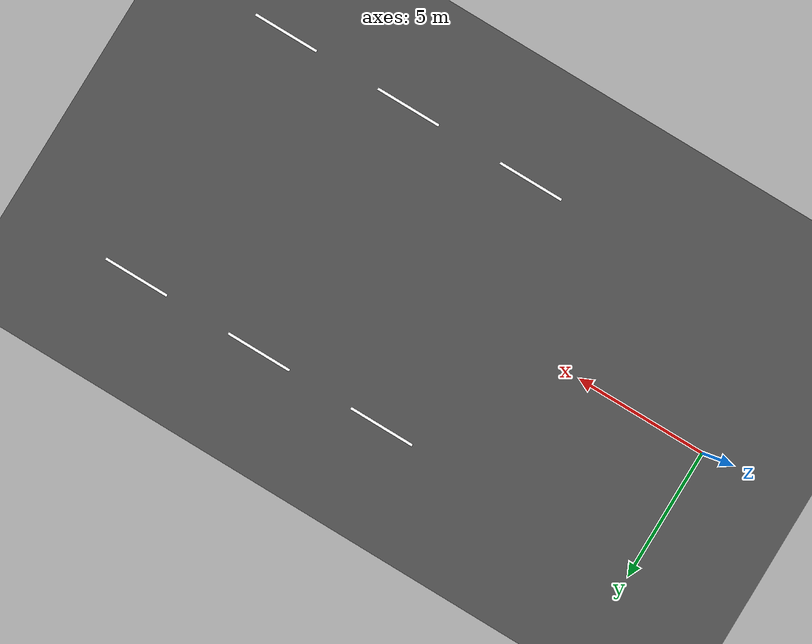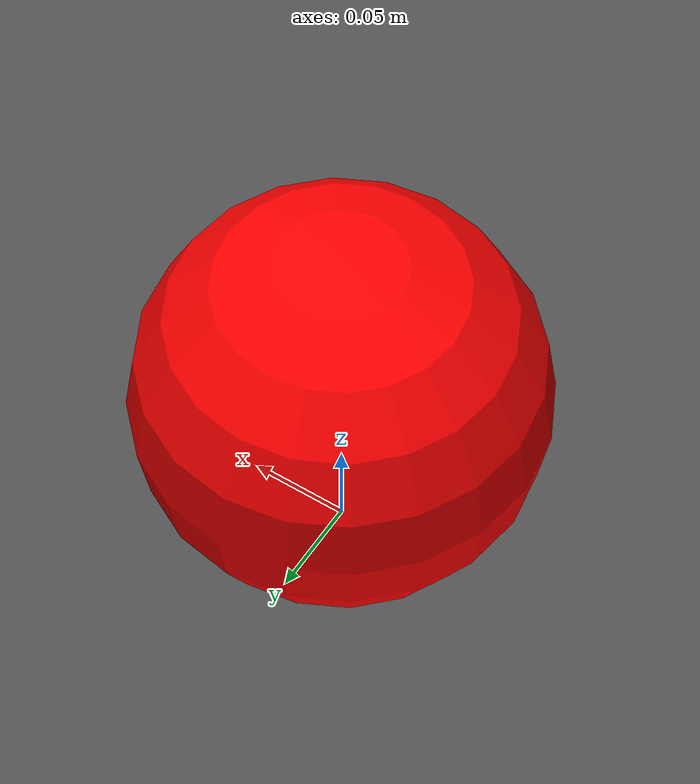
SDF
<?xml version="1.0" ?>
<sdf version="1.9">
  <world name="parking_lot">

    <!-- Physics -->
    <physics name="default_physics" type="dart">
      <max_step_size>0.001</max_step_size>
      <real_time_factor>0.5</real_time_factor>
    </physics>

    <!-- Plugins (auto-loaded by Gazebo) -->
    <plugin name="gz::sim::systems::Physics" filename="libPhysics.so"/>
    <plugin name="gz::sim::systems::SceneManager" filename="libSceneManager.so"/>
    <plugin name="gz::sim::systems::Sensors" filename="libSensors.so"/>

    <!-- Gravity -->
    <gravity>0 0 -9.81</gravity>

    <!-- Lighting -->
    <light type="directional" name="sun">
      <cast_shadows>true</cast_shadows>
      <pose>0 0 10 0 0 0</pose>
      <diffuse>0.8 0.8 0.8 1</diffuse>
      <specular>0.2 0.2 0.2 1</specular>
      <attenuation>
        <range>1000</range>
        <constant>0.9</constant>
        <linear>0.01</linear>
        <quadratic>0.001</quadratic>
      </attenuation>
      <direction>-0.5 0.1 -0.9</direction>
    </light>

    <!-- Ground Plane (Asphalt) -->
    <model name="ground_plane">
      <static>true</static>
      <link name="link">
        <collision name="collision">
          <geometry>
            <plane>
              <normal>0 0 1</normal>
              <size>50 50</size>
            </plane>
          </geometry>
        </collision>
        <visual name="visual">
          <geometry>
            <plane>
              <normal>0 0 1</normal>
              <size>50 50</size>
            </plane>
          </geometry>
          <material>
            <ambient>0.3 0.3 0.3 1</ambient>
            <diffuse>0.3 0.3 0.3 1</diffuse>
            <specular>0.1 0.1 0.1 1</specular>
          </material>
        </visual>
      </link>
    </model>

    <!-- Parking Slots (White Lines) -->
    <!-- Slot S1 -->
    <model name="slot_s1_line1">
      <static>true</static>
      <pose>10 5 0.01 0 0 0</pose>
      <link name="link">
        <visual name="visual">
          <geometry>
            <box>
              <size>2.5 0.1 0.02</size>
            </box>
          </geometry>
          <material>
            <ambient>1 1 1 1</ambient>
            <diffuse>1 1 1 1</diffuse>
          </material>
        </visual>
      </link>
    </model>

    <!-- Slot S2 -->
    <model name="slot_s2_line1">
      <static>true</static>
      <pose>15 5 0.01 0 0 0</pose>
      <link name="link">
        <visual name="visual">
          <geometry>
            <box>
              <size>2.5 0.1 0.02</size>
            </box>
          </geometry>
          <material>
            <ambient>1 1 1 1</ambient>
            <diffuse>1 1 1 1</diffuse>
          </material>
        </visual>
      </link>
    </model>

    <!-- Slot S3 -->
    <model name="slot_s3_line1">
      <static>true</static>
      <pose>20 5 0.01 0 0 0</pose>
      <link name="link">
        <visual name="visual">
          <geometry>
            <box>
              <size>2.5 0.1 0.02</size>
            </box>
          </geometry>
          <material>
            <ambient>1 1 1 1</ambient>
            <diffuse>1 1 1 1</diffuse>
          </material>
        </visual>
      </link>
    </model>

    <!-- Slot S4 (opposite row) -->
    <model name="slot_s4_line1">
      <static>true</static>
      <pose>10 -5 0.01 0 0 0</pose>
      <link name="link">
        <visual name="visual">
          <geometry>
            <box>
              <size>2.5 0.1 0.02</size>
            </box>
          </geometry>
          <material>
            <ambient>1 1 1 1</ambient>
            <diffuse>1 1 1 1</diffuse>
          </material>
        </visual>
      </link>
    </model>

    <!-- Slot S5 -->
    <model name="slot_s5_line1">
      <static>true</static>
      <pose>15 -5 0.01 0 0 0</pose>
      <link name="link">
        <visual name="visual">
          <geometry>
            <box>
              <size>2.5 0.1 0.02</size>
            </box>
          </geometry>
          <material>
            <ambient>1 1 1 1</ambient>
            <diffuse>1 1 1 1</diffuse>
          </material>
        </visual>
      </link>
    </model>

    <!-- Slot S6 -->
    <model name="slot_s6_line1">
      <static>true</static>
      <pose>20 -5 0.01 0 0 0</pose>
      <link name="link">
        <visual name="visual">
          <geometry>
            <box>
              <size>2.5 0.1 0.02</size>
            </box>
          </geometry>
          <material>
            <ambient>1 1 1 1</ambient>
            <diffuse>1 1 1 1</diffuse>
          </material>
        </visual>
      </link>
    </model>

    <!-- Origin Marker (Red sphere) -->
    <model name="origin_marker">
      <static>true</static>
      <pose>0 0 0.1 0 0 0</pose>
      <link name="link">
        <visual name="visual">
          <geometry>
            <sphere>
              <radius>0.1</radius>
            </sphere>
          </geometry>
          <material>
            <ambient>1 0 0 1</ambient>
            <diffuse>1 0 0 1</diffuse>
          </material>
        </visual>
      </link>
    </model>

<!-- Overhead Lot Camera -->
    <model name="lot_cam">
      <static>true</static>
      <!-- x y z roll pitch yaw -->
      <!-- pitch -1.5708 (90°) to point camera DOWN -->
      <pose>0 0 25 0 -1.5708 0</pose>
      <link name="camera_link">
        <sensor name="camera" type="camera">
          <always_on>true</always_on>
          <update_rate>10</update_rate>
          <visualize>true</visualize>
          <!-- Short topic name instead of auto-generated path -->
          <topic>/lot_cam/image</topic>
          <camera>
            <horizontal_fov>1.047</horizontal_fov>
            <image>
              <width>640</width>
              <height>480</height>
            </image>
            <clip>
              <near>0.1</near>
              <far>100</far>
            </clip>
          </camera>
        </sensor>
      </link>
    </model>

  </world>
</sdf>
